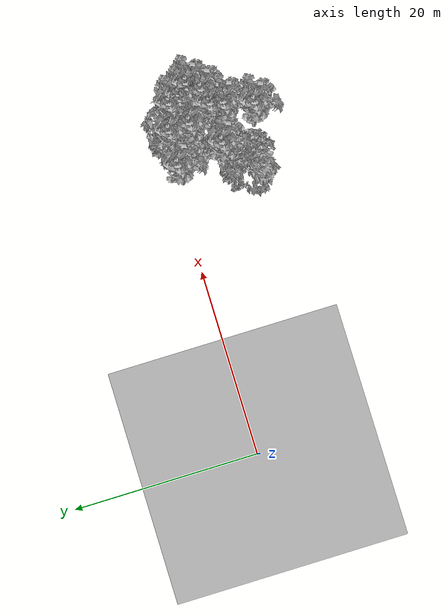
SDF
<sdf version="1.7">
 <world name="default">
  <model name="ground_plane">
   <static>1</static>
   <link name="link">
    <collision name="collision">
     <pose>-50 0 0 0 -0 0</pose>
     <geometry><plane><normal>0 0 1</normal><size>80 80</size></plane></geometry>
     <surface><contact><ode><min_depth>0.01</min_depth><max_vel>0</max_vel></ode></contact></surface>
    </collision>
    <visual name="grass">
     <cast_shadows>0</cast_shadows>
     <geometry>
      <mesh>
       <scale>0.46714285714285714 0.46714285714285714 0.1</scale>
       <uri>file://grass_plane/meshes/grass_plane.dae</uri>
      </mesh>
     </geometry>
    </visual>
   </link>
  </model>
  <model name="Tree 18">
   <static>1</static>
   <pose>36.43045669345068 -5.3121024685924 0 1.57079 -0 0</pose>
   <link name="link">
    <collision name="collision">
     <geometry><mesh><scale>3.5 5 3.5</scale><uri>model://tree_9/meshes/tree_9.obj</uri></mesh></geometry>
    </collision>
    <visual name="visual">
     <geometry><mesh><scale>3.5 5 3.5</scale><uri>model://tree_9/meshes/tree_9.obj</uri></mesh></geometry>
    </visual>
   </link>
  </model>
  <model name="Tree 35">
   <static>1</static>
   <pose>30.797695163887965 -5.788937927210171 0 1.57079 -0 0</pose>
   <link name="link">
    <collision name="collision">
     <geometry><mesh><scale>3.5 5 3.5</scale><uri>model://tree_9/meshes/tree_9.obj</uri></mesh></geometry>
    </collision>
    <visual name="visual">
     <geometry><mesh><scale>3.5 5 3.5</scale><uri>model://tree_9/meshes/tree_9.obj</uri></mesh></geometry>
    </visual>
   </link>
  </model>
  <model name="Tree 48">
   <static>1</static>
   <pose>33.62735261121554 -1.3660964412786143 0 1.57079 -0 0</pose>
   <link name="link">
    <collision name="collision">
     <geometry><mesh><scale>3.5 5 3.5</scale><uri>model://tree_2/meshes/tree_2.obj</uri></mesh></geometry>
    </collision>
    <visual name="visual">
     <geometry><mesh><scale>3.5 5 3.5</scale><uri>model://tree_2/meshes/tree_2.obj</uri></mesh></geometry>
    </visual>
   </link>
  </model>
  <model name="Tree 58">
   <static>1</static>
   <pose>29.03162884173699 -7.465425160918677 0 1.57079 -0 0</pose>
   <link name="link">
    <collision name="collision">
     <geometry><mesh><scale>3.5 5 3.5</scale><uri>model://tree_2/meshes/tree_2.obj</uri></mesh></geometry>
    </collision>
    <visual name="visual">
     <geometry><mesh><scale>3.5 5 3.5</scale><uri>model://tree_2/meshes/tree_2.obj</uri></mesh></geometry>
    </visual>
   </link>
  </model>
  <model name="Tree 184">
   <static>1</static>
   <pose>33.596070647528904 -3.2447394788831616 0 1.57079 -0 0</pose>
   <link name="link">
    <collision name="collision">
     <geometry><mesh><scale>3.5 5 3.5</scale><uri>model://tree_9/meshes/tree_9.obj</uri></mesh></geometry>
    </collision>
    <visual name="visual">
     <geometry><mesh><scale>3.5 5 3.5</scale><uri>model://tree_9/meshes/tree_9.obj</uri></mesh></geometry>
    </visual>
   </link>
  </model>
  <model name="Tree 227">
   <static>1</static>
   <pose>35.992539094520566 -1.9161369552011749 0 1.57079 -0 0</pose>
   <link name="link">
    <collision name="collision">
     <geometry><mesh><scale>3.5 5 3.5</scale><uri>model://tree_9/meshes/tree_9.obj</uri></mesh></geometry>
    </collision>
    <visual name="visual">
     <geometry><mesh><scale>3.5 5 3.5</scale><uri>model://tree_9/meshes/tree_9.obj</uri></mesh></geometry>
    </visual>
   </link>
  </model>
  <model name="Tree 296">
   <static>1</static>
   <pose>34.8606446477057 -5.742746552388347 0 1.57079 -0 0</pose>
   <link name="link">
    <collision name="collision">
     <geometry><mesh><scale>3.5 5 3.5</scale><uri>model://tree_9/meshes/tree_9.obj</uri></mesh></geometry>
    </collision>
    <visual name="visual">
     <geometry><mesh><scale>3.5 5 3.5</scale><uri>model://tree_9/meshes/tree_9.obj</uri></mesh></geometry>
    </visual>
   </link>
  </model>
  <model name="Tree 311">
   <static>1</static>
   <pose>37.44275052792014 -4.092319655811181 0 1.57079 -0 0</pose>
   <link name="link">
    <collision name="collision">
     <geometry><mesh><scale>3.5 5 3.5</scale><uri>model://tree_9/meshes/tree_9.obj</uri></mesh></geometry>
    </collision>
    <visual name="visual">
     <geometry><mesh><scale>3.5 5 3.5</scale><uri>model://tree_9/meshes/tree_9.obj</uri></mesh></geometry>
    </visual>
   </link>
  </model>
  <model name="Tree 333">
   <static>1</static>
   <pose>36.5710089532471 -3.1003908283296155 0 1.57079 -0 0</pose>
   <link name="link">
    <collision name="collision">
     <geometry><mesh><scale>3.5 5 3.5</scale><uri>model://tree_9/meshes/tree_9.obj</uri></mesh></geometry>
    </collision>
    <visual name="visual">
     <geometry><mesh><scale>3.5 5 3.5</scale><uri>model://tree_9/meshes/tree_9.obj</uri></mesh></geometry>
    </visual>
   </link>
  </model>
  <model name="Tree 390">
   <static>1</static>
   <pose>33.67284547620811 -9.96056090149321 0 1.57079 -0 0</pose>
   <link name="link">
    <collision name="collision">
     <geometry><mesh><scale>3.5 5 3.5</scale><uri>model://tree_9/meshes/tree_9.obj</uri></mesh></geometry>
    </collision>
    <visual name="visual">
     <geometry><mesh><scale>3.5 5 3.5</scale><uri>model://tree_9/meshes/tree_9.obj</uri></mesh></geometry>
    </visual>
   </link>
  </model>
  <model name="Tree 508">
   <static>1</static>
   <pose>29.900981545928076 -0.9447223012385422 0 1.57079 -0 0</pose>
   <link name="link">
    <collision name="collision">
     <geometry><mesh><scale>3.5 5 3.5</scale><uri>model://tree_9/meshes/tree_9.obj</uri></mesh></geometry>
    </collision>
    <visual name="visual">
     <geometry><mesh><scale>3.5 5 3.5</scale><uri>model://tree_9/meshes/tree_9.obj</uri></mesh></geometry>
    </visual>
   </link>
  </model>
  <model name="Tree 579">
   <static>1</static>
   <pose>34.65068006729932 -7.00704502516092 0 1.57079 -0 0</pose>
   <link name="link">
    <collision name="collision">
     <geometry><mesh><scale>3.5 5 3.5</scale><uri>model://tree_9/meshes/tree_9.obj</uri></mesh></geometry>
    </collision>
    <visual name="visual">
     <geometry><mesh><scale>3.5 5 3.5</scale><uri>model://tree_9/meshes/tree_9.obj</uri></mesh></geometry>
    </visual>
   </link>
  </model>
  <model name="Tree 617">
   <static>1</static>
   <pose>33.363103189878885 -1.109302205726756 0 1.57079 -0 0</pose>
   <link name="link">
    <collision name="collision">
     <geometry><mesh><scale>3.5 5 3.5</scale><uri>model://tree_9/meshes/tree_9.obj</uri></mesh></geometry>
    </collision>
    <visual name="visual">
     <geometry><mesh><scale>3.5 5 3.5</scale><uri>model://tree_9/meshes/tree_9.obj</uri></mesh></geometry>
    </visual>
   </link>
  </model>
  <model name="Bush 154">
   <static>1</static>
   <pose>37.40122075189312 -7.159624331822236 0 1.57079 -0 0</pose>
   <link name="link">
    <collision name="collision">
     <geometry><mesh><scale>2 2 2</scale><uri>model://bush_2/meshes/bush_2.obj</uri></mesh></geometry>
     <surface><contact><collide_without_contact>false</collide_without_contact></contact></surface>
    </collision>
    <visual name="visual">
     <geometry><mesh><scale>2 2 2</scale><uri>model://bush_2/meshes/bush_2.obj</uri></mesh></geometry>
    </visual>
   </link>
  </model>
  <model name="Bush 170">
   <static>1</static>
   <pose>37.877890222328276 -9.564568969125482 0 1.57079 -0 0</pose>
   <link name="link">
    <collision name="collision">
     <geometry><mesh><scale>2 2 2</scale><uri>model://bush_2/meshes/bush_2.obj</uri></mesh></geometry>
     <surface><contact><collide_without_contact>false</collide_without_contact></contact></surface>
    </collision>
    <visual name="visual">
     <geometry><mesh><scale>2 2 2</scale><uri>model://bush_2/meshes/bush_2.obj</uri></mesh></geometry>
    </visual>
   </link>
  </model>
  <model name="Bush 228">
   <static>1</static>
   <pose>35.857685405968255 -11.2872347164015 0 1.57079 -0 0</pose>
   <link name="link">
    <collision name="collision">
     <geometry><mesh><scale>2 2 2</scale><uri>model://bush_2/meshes/bush_2.obj</uri></mesh></geometry>
     <surface><contact><collide_without_contact>false</collide_without_contact></contact></surface>
    </collision>
    <visual name="visual">
     <geometry><mesh><scale>2 2 2</scale><uri>model://bush_2/meshes/bush_2.obj</uri></mesh></geometry>
    </visual>
   </link>
  </model>
  <model name="Bush 269">
   <static>1</static>
   <pose>35.2299822620556 -4.469803993372103 0 1.57079 -0 0</pose>
   <link name="link">
    <collision name="collision">
     <geometry><mesh><scale>2 2 2</scale><uri>model://bush_2/meshes/bush_2.obj</uri></mesh></geometry>
     <surface><contact><collide_without_contact>false</collide_without_contact></contact></surface>
    </collision>
    <visual name="visual">
     <geometry><mesh><scale>2 2 2</scale><uri>model://bush_2/meshes/bush_2.obj</uri></mesh></geometry>
    </visual>
   </link>
  </model>
  <model name="Bush 276">
   <static>1</static>
   <pose>33.51424166514707 -6.9009215008561 0 1.57079 -0 0</pose>
   <link name="link">
    <collision name="collision">
     <geometry><mesh><scale>2 2 2</scale><uri>model://bush_1/meshes/bush_1.obj</uri></mesh></geometry>
     <surface><contact><collide_without_contact>false</collide_without_contact></contact></surface>
    </collision>
    <visual name="visual">
     <geometry><mesh><scale>2 2 2</scale><uri>model://bush_1/meshes/bush_1.obj</uri></mesh></geometry>
    </visual>
   </link>
  </model>
  <model name="Bush 377">
   <static>1</static>
   <pose>37.040945074902254 -2.3994041764412515 0 1.57079 -0 0</pose>
   <link name="link">
    <collision name="collision">
     <geometry><mesh><scale>2 2 2</scale><uri>model://bush_2/meshes/bush_2.obj</uri></mesh></geometry>
     <surface><contact><collide_without_contact>false</collide_without_contact></contact></surface>
    </collision>
    <visual name="visual">
     <geometry><mesh><scale>2 2 2</scale><uri>model://bush_2/meshes/bush_2.obj</uri></mesh></geometry>
    </visual>
   </link>
  </model>
  <model name="Bush 482">
   <static>1</static>
   <pose>31.70292116002318 -4.363144153161173 0 1.57079 -0 0</pose>
   <link name="link">
    <collision name="collision">
     <geometry><mesh><scale>2 2 2</scale><uri>model://bush_1/meshes/bush_1.obj</uri></mesh></geometry>
     <surface><contact><collide_without_contact>false</collide_without_contact></contact></surface>
    </collision>
    <visual name="visual">
     <geometry><mesh><scale>2 2 2</scale><uri>model://bush_1/meshes/bush_1.obj</uri></mesh></geometry>
    </visual>
   </link>
  </model>
  <model name="Bush 575">
   <static>1</static>
   <pose>30.781842425326474 -1.316271306457466 0 1.57079 -0 0</pose>
   <link name="link">
    <collision name="collision">
     <geometry><mesh><scale>2 2 2</scale><uri>model://bush_2/meshes/bush_2.obj</uri></mesh></geometry>
     <surface><contact><collide_without_contact>false</collide_without_contact></contact></surface>
    </collision>
    <visual name="visual">
     <geometry><mesh><scale>2 2 2</scale><uri>model://bush_2/meshes/bush_2.obj</uri></mesh></geometry>
    </visual>
   </link>
  </model>
  <model name="Bush 576">
   <static>1</static>
   <pose>35.952131090818256 -11.794005883504106 0 1.57079 -0 0</pose>
   <link name="link">
    <collision name="collision">
     <geometry><mesh><scale>2 2 2</scale><uri>model://bush_2/meshes/bush_2.obj</uri></mesh></geometry>
     <surface><contact><collide_without_contact>false</collide_without_contact></contact></surface>
    </collision>
    <visual name="visual">
     <geometry><mesh><scale>2 2 2</scale><uri>model://bush_2/meshes/bush_2.obj</uri></mesh></geometry>
    </visual>
   </link>
  </model>
  <model name="Bush 637">
   <static>1</static>
   <pose>30.53305076123658 -9.887934026408214 0 1.57079 -0 0</pose>
   <link name="link">
    <collision name="collision">
     <geometry><mesh><scale>2 2 2</scale><uri>model://bush_2/meshes/bush_2.obj</uri></mesh></geometry>
     <surface><contact><collide_without_contact>false</collide_without_contact></contact></surface>
    </collision>
    <visual name="visual">
     <geometry><mesh><scale>2 2 2</scale><uri>model://bush_2/meshes/bush_2.obj</uri></mesh></geometry>
    </visual>
   </link>
  </model>
 </world>
</sdf>
